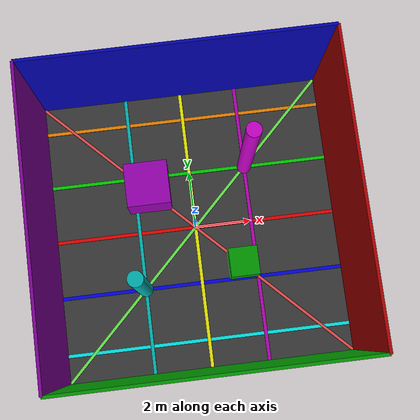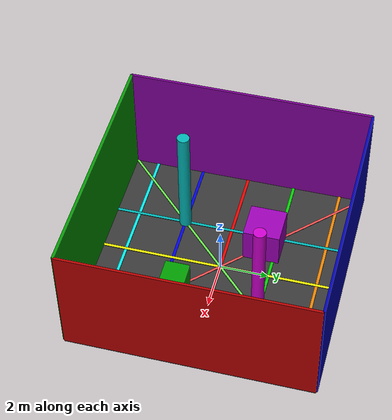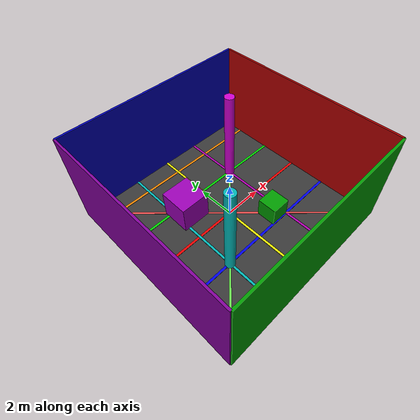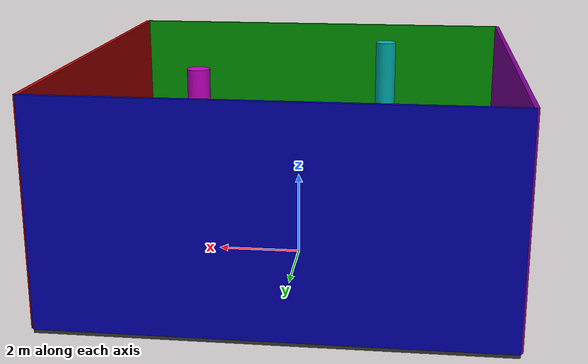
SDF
<?xml version="1.0" ?>
<sdf version="1.9">

<world name="default">

  <!-- PHYSICS -->

  <physics type="ode">
    <max_step_size>0.001</max_step_size>
    <real_time_factor>1.0</real_time_factor>
    <real_time_update_rate>1000</real_time_update_rate>
  </physics>

  <gravity>0 0 -9.81</gravity>

  <!-- SCENE -->

  <scene>
    <ambient>0.7 0.7 0.7 1</ambient>
    <background>0.25 0.25 0.25 1</background>
    <shadows>false</shadows>
  </scene>

  <!-- SUN -->

  <light name="sun" type="directional">
    <cast_shadows>false</cast_shadows>
    <pose>0 0 20 0 0 0</pose>
    <diffuse>1 1 1 1</diffuse>
    <specular>0.2 0.2 0.2 1</specular>
    <direction>-0.3 0.1 -1</direction>
  </light>

  <!-- INDOOR LIGHTS -->

  <light name="light1" type="point">
    <pose>-4 -4 6 0 0 0</pose>
    <diffuse>1 1 1 1</diffuse>
    <attenuation>
      <range>40</range>
      <constant>0.8</constant>
      <linear>0.01</linear>
      <quadratic>0.001</quadratic>
    </attenuation>
  </light>

  <light name="light2" type="point">
    <pose>4 4 6 0 0 0</pose>
    <diffuse>1 1 1 1</diffuse>
    <attenuation>
      <range>40</range>
      <constant>0.8</constant>
      <linear>0.01</linear>
      <quadratic>0.001</quadratic>
    </attenuation>
  </light>

  <!-- FLOOR -->

  <model name="base_floor">

    <static>true</static>

    <pose>0 0 -0.05 0 0 0</pose>

    <link name="link">

      <collision name="collision">
        <geometry>
          <box>
            <size>10 10 0.1</size>
          </box>
        </geometry>
      </collision>

      <visual name="visual">
        <geometry>
          <box>
            <size>10 10 0.1</size>
          </box>
        </geometry>

        <material>
          <ambient>0.18 0.18 0.18 1</ambient>
          <diffuse>0.22 0.22 0.22 1</diffuse>
          <specular>0.02 0.02 0.02 1</specular>
        </material>

      </visual>

    </link>

  </model>

  <!-- OPTICAL FLOW LINES -->

  <!-- Horizontal -->

  <model name="line_red">
    <static>true</static>
    <pose>0 0 0.01 0 0 0</pose>
    <link name="link">
      <visual name="visual">
        <geometry><box><size>10 0.12 0.02</size></box></geometry>
        <material>
          <ambient>0.8 0 0 1</ambient>
          <diffuse>0.9 0 0 1</diffuse>
        </material>
      </visual>
    </link>
  </model>

  <model name="line_green">
    <static>true</static>
    <pose>0 2 0.01 0 0 0</pose>
    <link name="link">
      <visual name="visual">
        <geometry><box><size>10 0.12 0.02</size></box></geometry>
        <material>
          <ambient>0 0.6 0 1</ambient>
          <diffuse>0 0.8 0 1</diffuse>
        </material>
      </visual>
    </link>
  </model>

  <model name="line_blue">
    <static>true</static>
    <pose>0 -2 0.01 0 0 0</pose>
    <link name="link">
      <visual name="visual">
        <geometry><box><size>10 0.12 0.02</size></box></geometry>
        <material>
          <ambient>0 0 0.7 1</ambient>
          <diffuse>0 0 0.9 1</diffuse>
        </material>
      </visual>
    </link>
  </model>

  <model name="line_orange">
    <static>true</static>
    <pose>0 4 0.01 0 0 0</pose>
    <link name="link">
      <visual name="visual">
        <geometry><box><size>10 0.12 0.02</size></box></geometry>
        <material>
          <ambient>0.8 0.4 0 1</ambient>
          <diffuse>0.9 0.5 0 1</diffuse>
        </material>
      </visual>
    </link>
  </model>

  <model name="line_cyan">
    <static>true</static>
    <pose>0 -4 0.01 0 0 0</pose>
    <link name="link">
      <visual name="visual">
        <geometry><box><size>10 0.12 0.02</size></box></geometry>
        <material>
          <ambient>0 0.7 0.7 1</ambient>
          <diffuse>0 0.9 0.9 1</diffuse>
        </material>
      </visual>
    </link>
  </model>

  <!-- Vertical -->

  <model name="line_yellow">
    <static>true</static>
    <pose>0 0 0.011 0 0 1.5707</pose>
    <link name="link">
      <visual name="visual">
        <geometry><box><size>10 0.12 0.02</size></box></geometry>
        <material>
          <ambient>0.8 0.8 0 1</ambient>
          <diffuse>0.9 0.9 0 1</diffuse>
        </material>
      </visual>
    </link>
  </model>

  <model name="line_magenta">
    <static>true</static>
    <pose>2 0 0.011 0 0 1.5707</pose>
    <link name="link">
      <visual name="visual">
        <geometry><box><size>10 0.12 0.02</size></box></geometry>
        <material>
          <ambient>0.5 0 0.5 1</ambient>
          <diffuse>0.7 0 0.7 1</diffuse>
        </material>
      </visual>
    </link>
  </model>

  <model name="line_teal">
    <static>true</static>
    <pose>-2 0 0.011 0 0 1.5707</pose>
    <link name="link">
      <visual name="visual">
        <geometry><box><size>10 0.12 0.02</size></box></geometry>
        <material>
          <ambient>0 0.5 0.5 1</ambient>
          <diffuse>0 0.7 0.7 1</diffuse>
        </material>
      </visual>
    </link>
  </model>

  <!-- Diagonal -->

  <model name="diag1">
    <static>true</static>
    <pose>0 0 0.012 0 0 0.785</pose>
    <link name="link">
      <visual name="visual">
        <geometry><box><size>14 0.1 0.02</size></box></geometry>
        <material>
          <ambient>0.3 0.8 0.2 1</ambient>
          <diffuse>0.4 0.9 0.3 1</diffuse>
        </material>
      </visual>
    </link>
  </model>

  <model name="diag2">
    <static>true</static>
    <pose>0 0 0.013 0 0 -0.785</pose>
    <link name="link">
      <visual name="visual">
        <geometry><box><size>14 0.1 0.02</size></box></geometry>
        <material>
          <ambient>0.8 0.2 0.2 1</ambient>
          <diffuse>0.9 0.3 0.3 1</diffuse>
        </material>
      </visual>
    </link>
  </model>

  <!-- WALLS -->

  <!-- Blue -->
  <model name="north_wall">
    <static>true</static>
    <pose>0 5 2.5 0 0 0</pose>
    <link name="link">
      <collision name="collision">
        <geometry><box><size>10 0.1 5</size></box></geometry>
      </collision>
      <visual name="visual">
        <geometry><box><size>10 0.1 5</size></box></geometry>
        <material>
          <ambient>0 0 0.5 1</ambient>
          <diffuse>0 0 0.7 1</diffuse>
        </material>
      </visual>
    </link>
  </model>

  <!-- Green -->
  <model name="south_wall">
    <static>true</static>
    <pose>0 -5 2.5 0 0 0</pose>
    <link name="link">
      <collision name="collision">
        <geometry><box><size>10 0.1 5</size></box></geometry>
      </collision>
      <visual name="visual">
        <geometry><box><size>10 0.1 5</size></box></geometry>
        <material>
          <ambient>0 0.4 0 1</ambient>
          <diffuse>0 0.6 0 1</diffuse>
        </material>
      </visual>
    </link>
  </model>

  <!-- Red -->
  <model name="east_wall">
    <static>true</static>
    <pose>5 0 2.5 0 0 0</pose>
    <link name="link">
      <collision name="collision">
        <geometry><box><size>0.1 10 5</size></box></geometry>
      </collision>
      <visual name="visual">
        <geometry><box><size>0.1 10 5</size></box></geometry>
        <material>
          <ambient>0.5 0 0 1</ambient>
          <diffuse>0.7 0 0 1</diffuse>
        </material>
      </visual>
    </link>
  </model>

  <!-- Purple -->
  <model name="west_wall">
    <static>true</static>
    <pose>-5 0 2.5 0 0 0</pose>
    <link name="link">
      <collision name="collision">
        <geometry><box><size>0.1 10 5</size></box></geometry>
      </collision>
      <visual name="visual">
        <geometry><box><size>0.1 10 5</size></box></geometry>
        <material>
          <ambient>0.35 0 0.45 1</ambient>
          <diffuse>0.5 0 0.6 1</diffuse>
        </material>
      </visual>
    </link>
  </model>

  <!-- PILLARS -->

  <model name="pillar1">
    <static>true</static>
    <pose>2 2 2.5 0 0 0</pose>
    <link name="link">
      <visual name="visual">
        <geometry><cylinder><radius>0.25</radius><length>5</length></cylinder></geometry>
        <material>
          <ambient>0.6 0 0.6 1</ambient>
          <diffuse>0.8 0 0.8 1</diffuse>
        </material>
      </visual>
    </link>
  </model>

  <model name="pillar2">
    <static>true</static>
    <pose>-2 -2 2.5 0 0 0</pose>
    <link name="link">
      <visual name="visual">
        <geometry><cylinder><radius>0.25</radius><length>5</length></cylinder></geometry>
        <material>
          <ambient>0 0.5 0.5 1</ambient>
          <diffuse>0 0.7 0.7 1</diffuse>
        </material>
      </visual>
    </link>
  </model>

  <!-- CUBES -->

  <model name="cube1">
    <static>true</static>
    <pose>1.5 -1.5 0.5 0 0 0</pose>
    <link name="link">
      <visual name="visual">
        <geometry><box><size>1 1 1</size></box></geometry>
        <material>
          <ambient>0 0.4 0 1</ambient>
          <diffuse>0 0.6 0 1</diffuse>
        </material>
      </visual>
    </link>
  </model>

  <model name="cube2">
    <static>true</static>
    <pose>-1.5 1.5 0.75 0 0 0</pose>
    <link name="link">
      <visual name="visual">
        <geometry><box><size>1.5 1.5 1.5</size></box></geometry>
        <material>
          <ambient>0.4 0 0.5 1</ambient>
          <diffuse>0.6 0 0.7 1</diffuse>
        </material>
      </visual>
    </link>
  </model>

</world>

</sdf>
